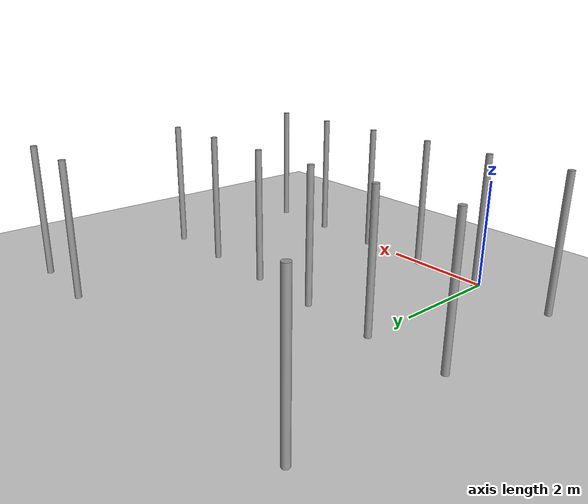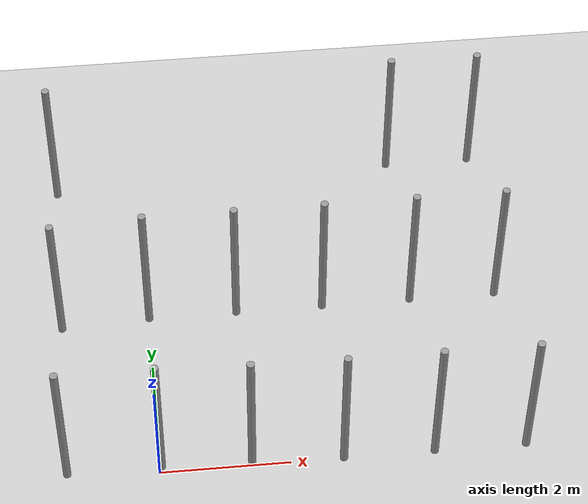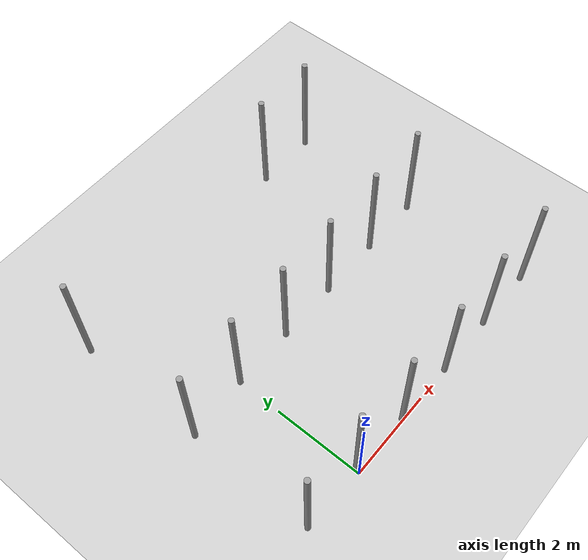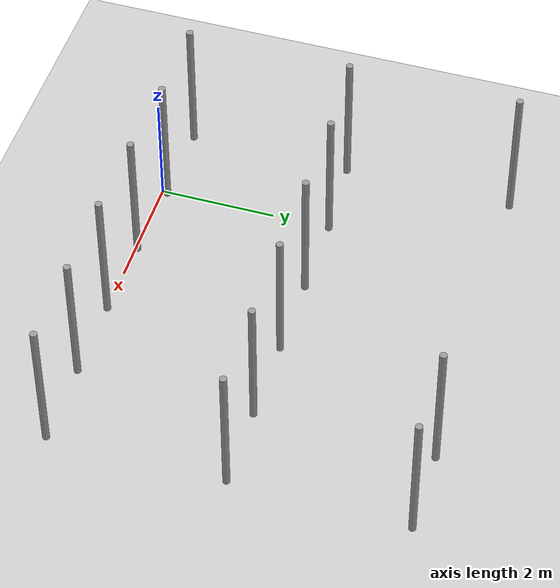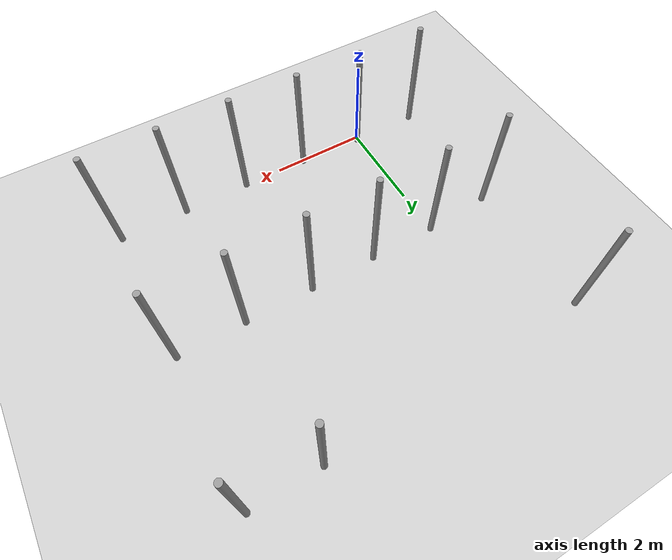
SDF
<sdf version="1.6">
 <world name="default">
  <model name="ground_plane">
   <static>1</static>
   <link name="link">
    <collision name="collision">
     <geometry><plane><normal>0 0 1</normal><size>100 100</size></plane></geometry>
     <surface><friction><ode><mu>100</mu><mu2>50</mu2></ode></friction></surface>
    </collision>
    <visual name="visual">
     <cast_shadows>0</cast_shadows>
     <geometry><plane><normal>0 0 1</normal><size>100 100</size></plane></geometry>
     <material>
      <script><uri>file://media/materials/scripts/gazebo.material</uri><name>Gazebo/Grey</name></script>
     </material>
    </visual>
   </link>
  </model>
  <model name="pole_8">
   <link name="link_0">
    <inertial>
     <mass>0.0364582</mass>
     <inertia>
      <ixx>0.00312124</ixx>
      <ixy>0</ixy>
      <ixz>0</ixz>
      <iyy>0.00312124</iyy>
      <iyz>0</iyz>
      <izz>0.00016615</izz>
     </inertia>
    </inertial>
    <visual name="visual">
     <geometry><cylinder><radius>0.06</radius><length>2.5</length></cylinder></geometry>
     <material>
      <lighting>1</lighting>
      <script><uri>file://media/materials/scripts/gazebo.material</uri><name>Gazebo/Grey</name></script>
      <ambient>0.3 0.3 0.3 1</ambient>
      <diffuse>0.7 0.7 0.7 1</diffuse>
      <specular>0.01 0.01 0.01 1</specular>
      <emissive>0 0 0 1</emissive>
      <shader type="vertex"><normal_map>__default__</normal_map></shader>
     </material>
    </visual>
    <collision name="collision">
     <geometry><cylinder><radius>0.06</radius><length>2.5</length></cylinder></geometry>
     <surface>
      <friction>
       <ode><mu>1</mu><mu2>1</mu2><fdir1>0 0 0</fdir1><slip1>0</slip1><slip2>0</slip2></ode>
       <torsional>
        <coefficient>1</coefficient>
        <patch_radius>0</patch_radius>
        <surface_radius>0</surface_radius>
        <use_patch_radius>1</use_patch_radius>
        <ode><slip>0</slip></ode>
       </torsional>
      </friction>
      <bounce><restitution_coefficient>0</restitution_coefficient><threshold>1e+06</threshold></bounce>
      <contact>
       <collide_without_contact>0</collide_without_contact>
       <collide_without_contact_bitmask>1</collide_without_contact_bitmask>
       <collide_bitmask>1</collide_bitmask>
       <ode>
        <soft_cfm>0</soft_cfm>
        <soft_erp>0.2</soft_erp>
        <kp>1e+13</kp>
        <kd>1</kd>
        <max_vel>0.01</max_vel>
        <min_depth>0</min_depth>
       </ode>
       <bullet>
        <split_impulse>1</split_impulse>
        <split_impulse_penetration_threshold>-0.01</split_impulse_penetration_threshold>
        <soft_cfm>0</soft_cfm>
        <soft_erp>0.2</soft_erp>
        <kp>1e+13</kp>
        <kd>1</kd>
       </bullet>
      </contact>
     </surface>
    </collision>
   </link>
   <static>0</static>
   <pose>1.40882 0.036302 1.24999 1e-06 -2e-06 -0.064602</pose>
  </model>
  <model name="pole_9">
   <link name="link_0">
    <inertial>
     <mass>0.0364582</mass>
     <inertia>
      <ixx>0.00312124</ixx>
      <ixy>0</ixy>
      <ixz>0</ixz>
      <iyy>0.00312124</iyy>
      <iyz>0</iyz>
      <izz>0.00016615</izz>
     </inertia>
    </inertial>
    <visual name="visual">
     <geometry><cylinder><radius>0.06</radius><length>2.5</length></cylinder></geometry>
     <material>
      <lighting>1</lighting>
      <script><uri>file://media/materials/scripts/gazebo.material</uri><name>Gazebo/Grey</name></script>
      <ambient>0.3 0.3 0.3 1</ambient>
      <diffuse>0.7 0.7 0.7 1</diffuse>
      <specular>0.01 0.01 0.01 1</specular>
      <emissive>0 0 0 1</emissive>
      <shader type="vertex"><normal_map>__default__</normal_map></shader>
     </material>
    </visual>
    <collision name="collision">
     <geometry><cylinder><radius>0.06</radius><length>2.5</length></cylinder></geometry>
     <surface>
      <friction>
       <ode><mu>1</mu><mu2>1</mu2><fdir1>0 0 0</fdir1><slip1>0</slip1><slip2>0</slip2></ode>
       <torsional>
        <coefficient>1</coefficient>
        <patch_radius>0</patch_radius>
        <surface_radius>0</surface_radius>
        <use_patch_radius>1</use_patch_radius>
        <ode><slip>0</slip></ode>
       </torsional>
      </friction>
      <bounce><restitution_coefficient>0</restitution_coefficient><threshold>1e+06</threshold></bounce>
      <contact>
       <collide_without_contact>0</collide_without_contact>
       <collide_without_contact_bitmask>1</collide_without_contact_bitmask>
       <collide_bitmask>1</collide_bitmask>
       <ode>
        <soft_cfm>0</soft_cfm>
        <soft_erp>0.2</soft_erp>
        <kp>1e+13</kp>
        <kd>1</kd>
        <max_vel>0.01</max_vel>
        <min_depth>0</min_depth>
       </ode>
       <bullet>
        <split_impulse>1</split_impulse>
        <split_impulse_penetration_threshold>-0.01</split_impulse_penetration_threshold>
        <soft_cfm>0</soft_cfm>
        <soft_erp>0.2</soft_erp>
        <kp>1e+13</kp>
        <kd>1</kd>
       </bullet>
      </contact>
     </surface>
    </collision>
   </link>
   <static>0</static>
   <pose>2.80867 0.006025 1.25 0 -1e-06 -0.087273</pose>
  </model>
  <model name="pole_10">
   <link name="link_0">
    <inertial>
     <mass>0.0364582</mass>
     <inertia>
      <ixx>0.00312124</ixx>
      <ixy>0</ixy>
      <ixz>0</ixz>
      <iyy>0.00312124</iyy>
      <iyz>0</iyz>
      <izz>0.00016615</izz>
     </inertia>
    </inertial>
    <visual name="visual">
     <geometry><cylinder><radius>0.06</radius><length>2.5</length></cylinder></geometry>
     <material>
      <lighting>1</lighting>
      <script><uri>file://media/materials/scripts/gazebo.material</uri><name>Gazebo/Grey</name></script>
      <ambient>0.3 0.3 0.3 1</ambient>
      <diffuse>0.7 0.7 0.7 1</diffuse>
      <specular>0.01 0.01 0.01 1</specular>
      <emissive>0 0 0 1</emissive>
      <shader type="vertex"><normal_map>__default__</normal_map></shader>
     </material>
    </visual>
    <collision name="collision">
     <geometry><cylinder><radius>0.06</radius><length>2.5</length></cylinder></geometry>
     <surface>
      <friction>
       <ode><mu>1</mu><mu2>1</mu2><fdir1>0 0 0</fdir1><slip1>0</slip1><slip2>0</slip2></ode>
       <torsional>
        <coefficient>1</coefficient>
        <patch_radius>0</patch_radius>
        <surface_radius>0</surface_radius>
        <use_patch_radius>1</use_patch_radius>
        <ode><slip>0</slip></ode>
       </torsional>
      </friction>
      <bounce><restitution_coefficient>0</restitution_coefficient><threshold>1e+06</threshold></bounce>
      <contact>
       <collide_without_contact>0</collide_without_contact>
       <collide_without_contact_bitmask>1</collide_without_contact_bitmask>
       <collide_bitmask>1</collide_bitmask>
       <ode>
        <soft_cfm>0</soft_cfm>
        <soft_erp>0.2</soft_erp>
        <kp>1e+13</kp>
        <kd>1</kd>
        <max_vel>0.01</max_vel>
        <min_depth>0</min_depth>
       </ode>
       <bullet>
        <split_impulse>1</split_impulse>
        <split_impulse_penetration_threshold>-0.01</split_impulse_penetration_threshold>
        <soft_cfm>0</soft_cfm>
        <soft_erp>0.2</soft_erp>
        <kp>1e+13</kp>
        <kd>1</kd>
       </bullet>
      </contact>
     </surface>
    </collision>
   </link>
   <static>0</static>
   <pose>4.20451 0.00568 1.25 -1e-06 -1e-06 -0.065144</pose>
  </model>
  <model name="pole_11">
   <link name="link_0">
    <inertial>
     <mass>0.0364582</mass>
     <inertia>
      <ixx>0.00312124</ixx>
      <ixy>0</ixy>
      <ixz>0</ixz>
      <iyy>0.00312124</iyy>
      <iyz>0</iyz>
      <izz>0.00016615</izz>
     </inertia>
    </inertial>
    <visual name="visual">
     <geometry><cylinder><radius>0.06</radius><length>2.5</length></cylinder></geometry>
     <material>
      <lighting>1</lighting>
      <script><uri>file://media/materials/scripts/gazebo.material</uri><name>Gazebo/Grey</name></script>
      <ambient>0.3 0.3 0.3 1</ambient>
      <diffuse>0.7 0.7 0.7 1</diffuse>
      <specular>0.01 0.01 0.01 1</specular>
      <emissive>0 0 0 1</emissive>
      <shader type="vertex"><normal_map>__default__</normal_map></shader>
     </material>
    </visual>
    <collision name="collision">
     <geometry><cylinder><radius>0.06</radius><length>2.5</length></cylinder></geometry>
     <surface>
      <friction>
       <ode><mu>1</mu><mu2>1</mu2><fdir1>0 0 0</fdir1><slip1>0</slip1><slip2>0</slip2></ode>
       <torsional>
        <coefficient>1</coefficient>
        <patch_radius>0</patch_radius>
        <surface_radius>0</surface_radius>
        <use_patch_radius>1</use_patch_radius>
        <ode><slip>0</slip></ode>
       </torsional>
      </friction>
      <bounce><restitution_coefficient>0</restitution_coefficient><threshold>1e+06</threshold></bounce>
      <contact>
       <collide_without_contact>0</collide_without_contact>
       <collide_without_contact_bitmask>1</collide_without_contact_bitmask>
       <collide_bitmask>1</collide_bitmask>
       <ode>
        <soft_cfm>0</soft_cfm>
        <soft_erp>0.2</soft_erp>
        <kp>1e+13</kp>
        <kd>1</kd>
        <max_vel>0.01</max_vel>
        <min_depth>0</min_depth>
       </ode>
       <bullet>
        <split_impulse>1</split_impulse>
        <split_impulse_penetration_threshold>-0.01</split_impulse_penetration_threshold>
        <soft_cfm>0</soft_cfm>
        <soft_erp>0.2</soft_erp>
        <kp>1e+13</kp>
        <kd>1</kd>
       </bullet>
      </contact>
     </surface>
    </collision>
   </link>
   <static>0</static>
   <pose>5.6169 0.005765 1.25 0 1e-06 -0.073533</pose>
  </model>
  <model name="pole_11_clone">
   <link name="link_0">
    <inertial>
     <mass>0.0364582</mass>
     <inertia>
      <ixx>0.00312124</ixx>
      <ixy>0</ixy>
      <ixz>0</ixz>
      <iyy>0.00312124</iyy>
      <iyz>0</iyz>
      <izz>0.00016615</izz>
     </inertia>
    </inertial>
    <visual name="visual">
     <geometry><cylinder><radius>0.06</radius><length>2.5</length></cylinder></geometry>
     <material>
      <lighting>1</lighting>
      <script><uri>file://media/materials/scripts/gazebo.material</uri><name>Gazebo/Grey</name></script>
      <ambient>0.3 0.3 0.3 1</ambient>
      <diffuse>0.7 0.7 0.7 1</diffuse>
      <specular>0.01 0.01 0.01 1</specular>
      <emissive>0 0 0 1</emissive>
      <shader type="vertex"><normal_map>__default__</normal_map></shader>
     </material>
    </visual>
    <collision name="collision">
     <geometry><cylinder><radius>0.06</radius><length>2.5</length></cylinder></geometry>
     <surface>
      <friction>
       <ode><mu>1</mu><mu2>1</mu2><fdir1>0 0 0</fdir1><slip1>0</slip1><slip2>0</slip2></ode>
       <torsional>
        <coefficient>1</coefficient>
        <patch_radius>0</patch_radius>
        <surface_radius>0</surface_radius>
        <use_patch_radius>1</use_patch_radius>
        <ode><slip>0</slip></ode>
       </torsional>
      </friction>
      <bounce><restitution_coefficient>0</restitution_coefficient><threshold>1e+06</threshold></bounce>
      <contact>
       <collide_without_contact>0</collide_without_contact>
       <collide_without_contact_bitmask>1</collide_without_contact_bitmask>
       <collide_bitmask>1</collide_bitmask>
       <ode>
        <soft_cfm>0</soft_cfm>
        <soft_erp>0.2</soft_erp>
        <kp>1e+13</kp>
        <kd>1</kd>
        <max_vel>0.01</max_vel>
        <min_depth>0</min_depth>
       </ode>
       <bullet>
        <split_impulse>1</split_impulse>
        <split_impulse_penetration_threshold>-0.01</split_impulse_penetration_threshold>
        <soft_cfm>0</soft_cfm>
        <soft_erp>0.2</soft_erp>
        <kp>1e+13</kp>
        <kd>1</kd>
       </bullet>
      </contact>
     </surface>
    </collision>
   </link>
   <static>0</static>
   <pose>0.001338 2.98789 1.25 -1e-06 1e-06 -0.076221</pose>
  </model>
  <model name="pole_2">
   <link name="link_0">
    <inertial>
     <mass>0.0364582</mass>
     <inertia>
      <ixx>0.00312124</ixx>
      <ixy>0</ixy>
      <ixz>0</ixz>
      <iyy>0.00312124</iyy>
      <iyz>0</iyz>
      <izz>0.00016615</izz>
     </inertia>
    </inertial>
    <visual name="visual">
     <geometry><cylinder><radius>0.06</radius><length>2.5</length></cylinder></geometry>
     <material>
      <lighting>1</lighting>
      <script><uri>file://media/materials/scripts/gazebo.material</uri><name>Gazebo/Grey</name></script>
      <ambient>0.3 0.3 0.3 1</ambient>
      <diffuse>0.7 0.7 0.7 1</diffuse>
      <specular>0.01 0.01 0.01 1</specular>
      <emissive>0 0 0 1</emissive>
      <shader type="vertex"><normal_map>__default__</normal_map></shader>
     </material>
    </visual>
    <collision name="collision">
     <geometry><cylinder><radius>0.06</radius><length>2.5</length></cylinder></geometry>
     <surface>
      <friction>
       <ode><mu>1</mu><mu2>1</mu2><fdir1>0 0 0</fdir1><slip1>0</slip1><slip2>0</slip2></ode>
       <torsional>
        <coefficient>1</coefficient>
        <patch_radius>0</patch_radius>
        <surface_radius>0</surface_radius>
        <use_patch_radius>1</use_patch_radius>
        <ode><slip>0</slip></ode>
       </torsional>
      </friction>
      <bounce><restitution_coefficient>0</restitution_coefficient><threshold>1e+06</threshold></bounce>
      <contact>
       <collide_without_contact>0</collide_without_contact>
       <collide_without_contact_bitmask>1</collide_without_contact_bitmask>
       <collide_bitmask>1</collide_bitmask>
       <ode>
        <soft_cfm>0</soft_cfm>
        <soft_erp>0.2</soft_erp>
        <kp>1e+13</kp>
        <kd>1</kd>
        <max_vel>0.01</max_vel>
        <min_depth>0</min_depth>
       </ode>
       <bullet>
        <split_impulse>1</split_impulse>
        <split_impulse_penetration_threshold>-0.01</split_impulse_penetration_threshold>
        <soft_cfm>0</soft_cfm>
        <soft_erp>0.2</soft_erp>
        <kp>1e+13</kp>
        <kd>1</kd>
       </bullet>
      </contact>
     </surface>
    </collision>
   </link>
   <static>0</static>
   <pose>0.034833 0.098405 1.25 -1e-06 -1e-06 0.00067</pose>
  </model>
  <model name="pole_3">
   <link name="link_0">
    <inertial>
     <mass>0.0364582</mass>
     <inertia>
      <ixx>0.00312124</ixx>
      <ixy>0</ixy>
      <ixz>0</ixz>
      <iyy>0.00312124</iyy>
      <iyz>0</iyz>
      <izz>0.00016615</izz>
     </inertia>
    </inertial>
    <visual name="visual">
     <geometry><cylinder><radius>0.06</radius><length>2.5</length></cylinder></geometry>
     <material>
      <lighting>1</lighting>
      <script><uri>file://media/materials/scripts/gazebo.material</uri><name>Gazebo/Grey</name></script>
      <ambient>0.3 0.3 0.3 1</ambient>
      <diffuse>0.7 0.7 0.7 1</diffuse>
      <specular>0.01 0.01 0.01 1</specular>
      <emissive>0 0 0 1</emissive>
      <shader type="vertex"><normal_map>__default__</normal_map></shader>
     </material>
    </visual>
    <collision name="collision">
     <geometry><cylinder><radius>0.06</radius><length>2.5</length></cylinder></geometry>
     <surface>
      <friction>
       <ode><mu>1</mu><mu2>1</mu2><fdir1>0 0 0</fdir1><slip1>0</slip1><slip2>0</slip2></ode>
       <torsional>
        <coefficient>1</coefficient>
        <patch_radius>0</patch_radius>
        <surface_radius>0</surface_radius>
        <use_patch_radius>1</use_patch_radius>
        <ode><slip>0</slip></ode>
       </torsional>
      </friction>
      <bounce><restitution_coefficient>0</restitution_coefficient><threshold>1e+06</threshold></bounce>
      <contact>
       <collide_without_contact>0</collide_without_contact>
       <collide_without_contact_bitmask>1</collide_without_contact_bitmask>
       <collide_bitmask>1</collide_bitmask>
       <ode>
        <soft_cfm>0</soft_cfm>
        <soft_erp>0.2</soft_erp>
        <kp>1e+13</kp>
        <kd>1</kd>
        <max_vel>0.01</max_vel>
        <min_depth>0</min_depth>
       </ode>
       <bullet>
        <split_impulse>1</split_impulse>
        <split_impulse_penetration_threshold>-0.01</split_impulse_penetration_threshold>
        <soft_cfm>0</soft_cfm>
        <soft_erp>0.2</soft_erp>
        <kp>1e+13</kp>
        <kd>1</kd>
       </bullet>
      </contact>
     </surface>
    </collision>
   </link>
   <static>0</static>
   <pose>1.40532 2.98552 1.25 1e-06 -1e-06 -0.061219</pose>
  </model>
  <model name="pole_5">
   <link name="link_0">
    <inertial>
     <mass>0.0364582</mass>
     <inertia>
      <ixx>0.00312124</ixx>
      <ixy>0</ixy>
      <ixz>0</ixz>
      <iyy>0.00312124</iyy>
      <iyz>0</iyz>
      <izz>0.00016615</izz>
     </inertia>
    </inertial>
    <visual name="visual">
     <geometry><cylinder><radius>0.06</radius><length>2.5</length></cylinder></geometry>
     <material>
      <lighting>1</lighting>
      <script><uri>file://media/materials/scripts/gazebo.material</uri><name>Gazebo/Grey</name></script>
      <ambient>0.3 0.3 0.3 1</ambient>
      <diffuse>0.7 0.7 0.7 1</diffuse>
      <specular>0.01 0.01 0.01 1</specular>
      <emissive>0 0 0 1</emissive>
      <shader type="vertex"><normal_map>__default__</normal_map></shader>
     </material>
    </visual>
    <collision name="collision">
     <geometry><cylinder><radius>0.06</radius><length>2.5</length></cylinder></geometry>
     <surface>
      <friction>
       <ode><mu>1</mu><mu2>1</mu2><fdir1>0 0 0</fdir1><slip1>0</slip1><slip2>0</slip2></ode>
       <torsional>
        <coefficient>1</coefficient>
        <patch_radius>0</patch_radius>
        <surface_radius>0</surface_radius>
        <use_patch_radius>1</use_patch_radius>
        <ode><slip>0</slip></ode>
       </torsional>
      </friction>
      <bounce><restitution_coefficient>0</restitution_coefficient><threshold>1e+06</threshold></bounce>
      <contact>
       <collide_without_contact>0</collide_without_contact>
       <collide_without_contact_bitmask>1</collide_without_contact_bitmask>
       <collide_bitmask>1</collide_bitmask>
       <ode>
        <soft_cfm>0</soft_cfm>
        <soft_erp>0.2</soft_erp>
        <kp>1e+13</kp>
        <kd>1</kd>
        <max_vel>0.01</max_vel>
        <min_depth>0</min_depth>
       </ode>
       <bullet>
        <split_impulse>1</split_impulse>
        <split_impulse_penetration_threshold>-0.01</split_impulse_penetration_threshold>
        <soft_cfm>0</soft_cfm>
        <soft_erp>0.2</soft_erp>
        <kp>1e+13</kp>
        <kd>1</kd>
       </bullet>
      </contact>
     </surface>
    </collision>
   </link>
   <static>0</static>
   <pose>2.79637 2.98493 1.24999 -1e-06 -1e-06 -0.056661</pose>
  </model>
  <model name="pole_6">
   <link name="link_0">
    <inertial>
     <mass>0.0364582</mass>
     <inertia>
      <ixx>0.00312124</ixx>
      <ixy>0</ixy>
      <ixz>0</ixz>
      <iyy>0.00312124</iyy>
      <iyz>0</iyz>
      <izz>0.00016615</izz>
     </inertia>
    </inertial>
    <visual name="visual">
     <geometry><cylinder><radius>0.06</radius><length>2.5</length></cylinder></geometry>
     <material>
      <lighting>1</lighting>
      <script><uri>file://media/materials/scripts/gazebo.material</uri><name>Gazebo/Grey</name></script>
      <ambient>0.3 0.3 0.3 1</ambient>
      <diffuse>0.7 0.7 0.7 1</diffuse>
      <specular>0.01 0.01 0.01 1</specular>
      <emissive>0 0 0 1</emissive>
      <shader type="vertex"><normal_map>__default__</normal_map></shader>
     </material>
    </visual>
    <collision name="collision">
     <geometry><cylinder><radius>0.06</radius><length>2.5</length></cylinder></geometry>
     <surface>
      <friction>
       <ode><mu>1</mu><mu2>1</mu2><fdir1>0 0 0</fdir1><slip1>0</slip1><slip2>0</slip2></ode>
       <torsional>
        <coefficient>1</coefficient>
        <patch_radius>0</patch_radius>
        <surface_radius>0</surface_radius>
        <use_patch_radius>1</use_patch_radius>
        <ode><slip>0</slip></ode>
       </torsional>
      </friction>
      <bounce><restitution_coefficient>0</restitution_coefficient><threshold>1e+06</threshold></bounce>
      <contact>
       <collide_without_contact>0</collide_without_contact>
       <collide_without_contact_bitmask>1</collide_without_contact_bitmask>
       <collide_bitmask>1</collide_bitmask>
       <ode>
        <soft_cfm>0</soft_cfm>
        <soft_erp>0.2</soft_erp>
        <kp>1e+13</kp>
        <kd>1</kd>
        <max_vel>0.01</max_vel>
        <min_depth>0</min_depth>
       </ode>
       <bullet>
        <split_impulse>1</split_impulse>
        <split_impulse_penetration_threshold>-0.01</split_impulse_penetration_threshold>
        <soft_cfm>0</soft_cfm>
        <soft_erp>0.2</soft_erp>
        <kp>1e+13</kp>
        <kd>1</kd>
       </bullet>
      </contact>
     </surface>
    </collision>
   </link>
   <static>0</static>
   <pose>4.223 2.98517 1.24999 -1e-06 -1e-06 -0.059412</pose>
  </model>
  <model name="pole_7">
   <link name="link_0">
    <inertial>
     <mass>0.0364582</mass>
     <inertia>
      <ixx>0.00312124</ixx>
      <ixy>0</ixy>
      <ixz>0</ixz>
      <iyy>0.00312124</iyy>
      <iyz>0</iyz>
      <izz>0.00016615</izz>
     </inertia>
    </inertial>
    <visual name="visual">
     <geometry><cylinder><radius>0.06</radius><length>2.5</length></cylinder></geometry>
     <material>
      <lighting>1</lighting>
      <script><uri>file://media/materials/scripts/gazebo.material</uri><name>Gazebo/Grey</name></script>
      <ambient>0.3 0.3 0.3 1</ambient>
      <diffuse>0.7 0.7 0.7 1</diffuse>
      <specular>0.01 0.01 0.01 1</specular>
      <emissive>0 0 0 1</emissive>
      <shader type="vertex"><normal_map>__default__</normal_map></shader>
     </material>
    </visual>
    <collision name="collision">
     <geometry><cylinder><radius>0.06</radius><length>2.5</length></cylinder></geometry>
     <surface>
      <friction>
       <ode><mu>1</mu><mu2>1</mu2><fdir1>0 0 0</fdir1><slip1>0</slip1><slip2>0</slip2></ode>
       <torsional>
        <coefficient>1</coefficient>
        <patch_radius>0</patch_radius>
        <surface_radius>0</surface_radius>
        <use_patch_radius>1</use_patch_radius>
        <ode><slip>0</slip></ode>
       </torsional>
      </friction>
      <bounce><restitution_coefficient>0</restitution_coefficient><threshold>1e+06</threshold></bounce>
      <contact>
       <collide_without_contact>0</collide_without_contact>
       <collide_without_contact_bitmask>1</collide_without_contact_bitmask>
       <collide_bitmask>1</collide_bitmask>
       <ode>
        <soft_cfm>0</soft_cfm>
        <soft_erp>0.2</soft_erp>
        <kp>1e+13</kp>
        <kd>1</kd>
        <max_vel>0.01</max_vel>
        <min_depth>0</min_depth>
       </ode>
       <bullet>
        <split_impulse>1</split_impulse>
        <split_impulse_penetration_threshold>-0.01</split_impulse_penetration_threshold>
        <soft_cfm>0</soft_cfm>
        <soft_erp>0.2</soft_erp>
        <kp>1e+13</kp>
        <kd>1</kd>
       </bullet>
      </contact>
     </surface>
    </collision>
   </link>
   <static>0</static>
   <pose>5.60795 2.98517 1.25 -1e-06 1e-06 -0.059801</pose>
  </model>
  <model name="pole_14">
   <link name="link_0">
    <inertial>
     <mass>0.0364582</mass>
     <inertia>
      <ixx>0.00312124</ixx>
      <ixy>0</ixy>
      <ixz>0</ixz>
      <iyy>0.00312124</iyy>
      <iyz>0</iyz>
      <izz>0.00016615</izz>
     </inertia>
    </inertial>
    <visual name="visual">
     <geometry><cylinder><radius>0.06</radius><length>2.5</length></cylinder></geometry>
     <material>
      <lighting>1</lighting>
      <script><uri>file://media/materials/scripts/gazebo.material</uri><name>Gazebo/Grey</name></script>
      <ambient>0.3 0.3 0.3 1</ambient>
      <diffuse>0.7 0.7 0.7 1</diffuse>
      <specular>0.01 0.01 0.01 1</specular>
      <emissive>0 0 0 1</emissive>
      <shader type="vertex"><normal_map>__default__</normal_map></shader>
     </material>
    </visual>
    <collision name="collision">
     <geometry><cylinder><radius>0.06</radius><length>2.5</length></cylinder></geometry>
     <surface>
      <friction>
       <ode><mu>1</mu><mu2>1</mu2><fdir1>0 0 0</fdir1><slip1>0</slip1><slip2>0</slip2></ode>
       <torsional>
        <coefficient>1</coefficient>
        <patch_radius>0</patch_radius>
        <surface_radius>0</surface_radius>
        <use_patch_radius>1</use_patch_radius>
        <ode><slip>0</slip></ode>
       </torsional>
      </friction>
      <bounce><restitution_coefficient>0</restitution_coefficient><threshold>1e+06</threshold></bounce>
      <contact>
       <collide_without_contact>0</collide_without_contact>
       <collide_without_contact_bitmask>1</collide_without_contact_bitmask>
       <collide_bitmask>1</collide_bitmask>
       <ode>
        <soft_cfm>0</soft_cfm>
        <soft_erp>0.2</soft_erp>
        <kp>1e+13</kp>
        <kd>1</kd>
        <max_vel>0.01</max_vel>
        <min_depth>0</min_depth>
       </ode>
       <bullet>
        <split_impulse>1</split_impulse>
        <split_impulse_penetration_threshold>-0.01</split_impulse_penetration_threshold>
        <soft_cfm>0</soft_cfm>
        <soft_erp>0.2</soft_erp>
        <kp>1e+13</kp>
        <kd>1</kd>
       </bullet>
      </contact>
     </surface>
    </collision>
   </link>
   <static>0</static>
   <pose>4.22009 5.96502 1.25 0 -3e-06 -0.058787</pose>
  </model>
  <model name="pole_15">
   <link name="link_0">
    <inertial>
     <mass>0.0364582</mass>
     <inertia>
      <ixx>0.00312124</ixx>
      <ixy>0</ixy>
      <ixz>0</ixz>
      <iyy>0.00312124</iyy>
      <iyz>0</iyz>
      <izz>0.00016615</izz>
     </inertia>
    </inertial>
    <visual name="visual">
     <geometry><cylinder><radius>0.06</radius><length>2.5</length></cylinder></geometry>
     <material>
      <lighting>1</lighting>
      <script><uri>file://media/materials/scripts/gazebo.material</uri><name>Gazebo/Grey</name></script>
      <ambient>0.3 0.3 0.3 1</ambient>
      <diffuse>0.7 0.7 0.7 1</diffuse>
      <specular>0.01 0.01 0.01 1</specular>
      <emissive>0 0 0 1</emissive>
      <shader type="vertex"><normal_map>__default__</normal_map></shader>
     </material>
    </visual>
    <collision name="collision">
     <geometry><cylinder><radius>0.06</radius><length>2.5</length></cylinder></geometry>
     <surface>
      <friction>
       <ode><mu>1</mu><mu2>1</mu2><fdir1>0 0 0</fdir1><slip1>0</slip1><slip2>0</slip2></ode>
       <torsional>
        <coefficient>1</coefficient>
        <patch_radius>0</patch_radius>
        <surface_radius>0</surface_radius>
        <use_patch_radius>1</use_patch_radius>
        <ode><slip>0</slip></ode>
       </torsional>
      </friction>
      <bounce><restitution_coefficient>0</restitution_coefficient><threshold>1e+06</threshold></bounce>
      <contact>
       <collide_without_contact>0</collide_without_contact>
       <collide_without_contact_bitmask>1</collide_without_contact_bitmask>
       <collide_bitmask>1</collide_bitmask>
       <ode>
        <soft_cfm>0</soft_cfm>
        <soft_erp>0.2</soft_erp>
        <kp>1e+13</kp>
        <kd>1</kd>
        <max_vel>0.01</max_vel>
        <min_depth>0</min_depth>
       </ode>
       <bullet>
        <split_impulse>1</split_impulse>
        <split_impulse_penetration_threshold>-0.01</split_impulse_penetration_threshold>
        <soft_cfm>0</soft_cfm>
        <soft_erp>0.2</soft_erp>
        <kp>1e+13</kp>
        <kd>1</kd>
       </bullet>
      </contact>
     </surface>
    </collision>
   </link>
   <static>0</static>
   <pose>5.62406 5.96529 1.25 -1e-06 1e-06 -0.054526</pose>
  </model>
  <model name="pole_2_clone">
   <link name="link_0">
    <inertial>
     <mass>0.0364582</mass>
     <inertia>
      <ixx>0.00312124</ixx>
      <ixy>0</ixy>
      <ixz>0</ixz>
      <iyy>0.00312124</iyy>
      <iyz>0</iyz>
      <izz>0.00016615</izz>
     </inertia>
    </inertial>
    <visual name="visual">
     <geometry><cylinder><radius>0.06</radius><length>2.5</length></cylinder></geometry>
     <material>
      <lighting>1</lighting>
      <script><uri>file://media/materials/scripts/gazebo.material</uri><name>Gazebo/Grey</name></script>
      <ambient>0.3 0.3 0.3 1</ambient>
      <diffuse>0.7 0.7 0.7 1</diffuse>
      <specular>0.01 0.01 0.01 1</specular>
      <emissive>0 0 0 1</emissive>
      <shader type="vertex"><normal_map>__default__</normal_map></shader>
     </material>
    </visual>
    <collision name="collision">
     <geometry><cylinder><radius>0.06</radius><length>2.5</length></cylinder></geometry>
     <surface>
      <friction>
       <ode><mu>1</mu><mu2>1</mu2><fdir1>0 0 0</fdir1><slip1>0</slip1><slip2>0</slip2></ode>
       <torsional>
        <coefficient>1</coefficient>
        <patch_radius>0</patch_radius>
        <surface_radius>0</surface_radius>
        <use_patch_radius>1</use_patch_radius>
        <ode><slip>0</slip></ode>
       </torsional>
      </friction>
      <bounce><restitution_coefficient>0</restitution_coefficient><threshold>1e+06</threshold></bounce>
      <contact>
       <collide_without_contact>0</collide_without_contact>
       <collide_without_contact_bitmask>1</collide_without_contact_bitmask>
       <collide_bitmask>1</collide_bitmask>
       <ode>
        <soft_cfm>0</soft_cfm>
        <soft_erp>0.2</soft_erp>
        <kp>1e+13</kp>
        <kd>1</kd>
        <max_vel>0.01</max_vel>
        <min_depth>0</min_depth>
       </ode>
       <bullet>
        <split_impulse>1</split_impulse>
        <split_impulse_penetration_threshold>-0.01</split_impulse_penetration_threshold>
        <soft_cfm>0</soft_cfm>
        <soft_erp>0.2</soft_erp>
        <kp>1e+13</kp>
        <kd>1</kd>
       </bullet>
      </contact>
     </surface>
    </collision>
   </link>
   <static>0</static>
   <pose>-1.39933 0.096429 1.25 -1e-06 -1e-06 -0.003562</pose>
  </model>
  <model name="pole_2_clone_0">
   <link name="link_0">
    <inertial>
     <mass>0.0364582</mass>
     <inertia>
      <ixx>0.00312124</ixx>
      <ixy>0</ixy>
      <ixz>0</ixz>
      <iyy>0.00312124</iyy>
      <iyz>0</iyz>
      <izz>0.00016615</izz>
     </inertia>
    </inertial>
    <visual name="visual">
     <geometry><cylinder><radius>0.06</radius><length>2.5</length></cylinder></geometry>
     <material>
      <lighting>1</lighting>
      <script><uri>file://media/materials/scripts/gazebo.material</uri><name>Gazebo/Grey</name></script>
      <ambient>0.3 0.3 0.3 1</ambient>
      <diffuse>0.7 0.7 0.7 1</diffuse>
      <specular>0.01 0.01 0.01 1</specular>
      <emissive>0 0 0 1</emissive>
      <shader type="vertex"><normal_map>__default__</normal_map></shader>
     </material>
    </visual>
    <collision name="collision">
     <geometry><cylinder><radius>0.06</radius><length>2.5</length></cylinder></geometry>
     <surface>
      <friction>
       <ode><mu>1</mu><mu2>1</mu2><fdir1>0 0 0</fdir1><slip1>0</slip1><slip2>0</slip2></ode>
       <torsional>
        <coefficient>1</coefficient>
        <patch_radius>0</patch_radius>
        <surface_radius>0</surface_radius>
        <use_patch_radius>1</use_patch_radius>
        <ode><slip>0</slip></ode>
       </torsional>
      </friction>
      <bounce><restitution_coefficient>0</restitution_coefficient><threshold>1e+06</threshold></bounce>
      <contact>
       <collide_without_contact>0</collide_without_contact>
       <collide_without_contact_bitmask>1</collide_without_contact_bitmask>
       <collide_bitmask>1</collide_bitmask>
       <ode>
        <soft_cfm>0</soft_cfm>
        <soft_erp>0.2</soft_erp>
        <kp>1e+13</kp>
        <kd>1</kd>
        <max_vel>0.01</max_vel>
        <min_depth>0</min_depth>
       </ode>
       <bullet>
        <split_impulse>1</split_impulse>
        <split_impulse_penetration_threshold>-0.01</split_impulse_penetration_threshold>
        <soft_cfm>0</soft_cfm>
        <soft_erp>0.2</soft_erp>
        <kp>1e+13</kp>
        <kd>1</kd>
       </bullet>
      </contact>
     </surface>
    </collision>
   </link>
   <static>0</static>
   <pose>-1.39939 2.90423 1.25 0 -2e-06 -0.001377</pose>
  </model>
  <model name="pole_2_clone_1">
   <link name="link_0">
    <inertial>
     <mass>0.0364582</mass>
     <inertia>
      <ixx>0.00312124</ixx>
      <ixy>0</ixy>
      <ixz>0</ixz>
      <iyy>0.00312124</iyy>
      <iyz>0</iyz>
      <izz>0.00016615</izz>
     </inertia>
    </inertial>
    <visual name="visual">
     <geometry><cylinder><radius>0.06</radius><length>2.5</length></cylinder></geometry>
     <material>
      <lighting>1</lighting>
      <script><uri>file://media/materials/scripts/gazebo.material</uri><name>Gazebo/Grey</name></script>
      <ambient>0.3 0.3 0.3 1</ambient>
      <diffuse>0.7 0.7 0.7 1</diffuse>
      <specular>0.01 0.01 0.01 1</specular>
      <emissive>0 0 0 1</emissive>
      <shader type="vertex"><normal_map>__default__</normal_map></shader>
     </material>
    </visual>
    <collision name="collision">
     <geometry><cylinder><radius>0.06</radius><length>2.5</length></cylinder></geometry>
     <surface>
      <friction>
       <ode><mu>1</mu><mu2>1</mu2><fdir1>0 0 0</fdir1><slip1>0</slip1><slip2>0</slip2></ode>
       <torsional>
        <coefficient>1</coefficient>
        <patch_radius>0</patch_radius>
        <surface_radius>0</surface_radius>
        <use_patch_radius>1</use_patch_radius>
        <ode><slip>0</slip></ode>
       </torsional>
      </friction>
      <bounce><restitution_coefficient>0</restitution_coefficient><threshold>1e+06</threshold></bounce>
      <contact>
       <collide_without_contact>0</collide_without_contact>
       <collide_without_contact_bitmask>1</collide_without_contact_bitmask>
       <collide_bitmask>1</collide_bitmask>
       <ode>
        <soft_cfm>0</soft_cfm>
        <soft_erp>0.2</soft_erp>
        <kp>1e+13</kp>
        <kd>1</kd>
        <max_vel>0.01</max_vel>
        <min_depth>0</min_depth>
       </ode>
       <bullet>
        <split_impulse>1</split_impulse>
        <split_impulse_penetration_threshold>-0.01</split_impulse_penetration_threshold>
        <soft_cfm>0</soft_cfm>
        <soft_erp>0.2</soft_erp>
        <kp>1e+13</kp>
        <kd>1</kd>
       </bullet>
      </contact>
     </surface>
    </collision>
   </link>
   <static>0</static>
   <pose>-1.39943 5.80464 1.24999 -1e-06 -1e-06 0.000724</pose>
  </model>
 </world>
</sdf>
